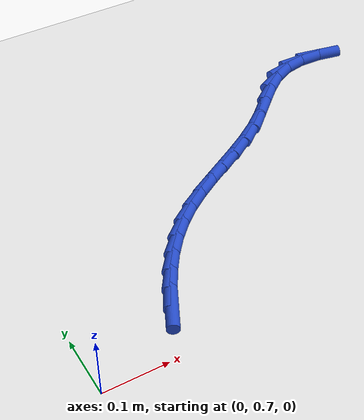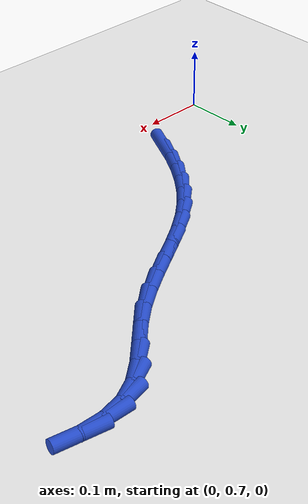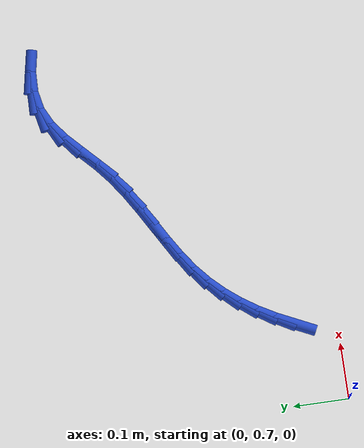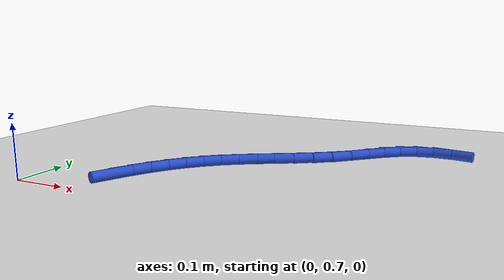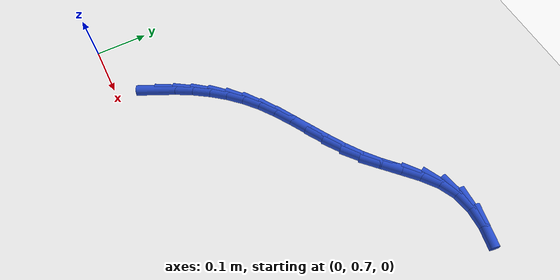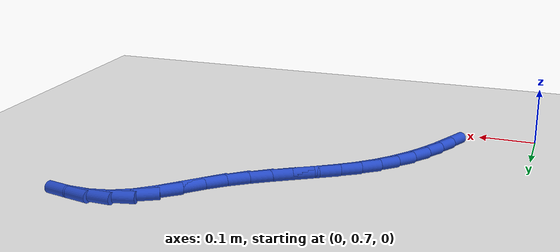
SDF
<sdf version="1.6">
 <world name="default">
  <model name="ground_plane">
   <static>1</static>
   <link name="link">
    <collision name="collision">
     <geometry><plane><normal>0 0 1</normal><size>100 100</size></plane></geometry>
     <surface><friction><ode><mu>100</mu><mu2>50</mu2></ode></friction></surface>
    </collision>
    <visual name="visual">
     <cast_shadows>0</cast_shadows>
     <geometry><plane><normal>0 0 1</normal><size>100 100</size></plane></geometry>
     <material>
      <script><uri>file://media/materials/scripts/gazebo.material</uri><name>Gazebo/WhiteGlow</name></script>
     </material>
    </visual>
   </link>
  </model>
  <model name="line">
   <link name="link_21">
    <pose>0.14508885758028742 0.7756922864772411 0.01 0 1.57 1.1218911109934948</pose>
    <collision name="collision">
     <geometry><cylinder><radius>0.01</radius><length>0.08</length></cylinder></geometry>
    </collision>
    <visual name="visual">
     <material>
      <script><name>Gazebo/Blue</name><uri>file://media/materials/scripts/gazebo.material</uri></script>
     </material>
     <geometry><cylinder><radius>0.01</radius><length>0.08</length></cylinder></geometry>
    </visual>
   </link>
   <link name="link_22">
    <pose>0.160461485988186 0.8076052027384023 0.01 0 1.57 1.0553476685875287</pose>
    <collision name="collision">
     <geometry><cylinder><radius>0.01</radius><length>0.08</length></cylinder></geometry>
    </collision>
    <visual name="visual">
     <material>
      <script><name>Gazebo/Blue</name><uri>file://media/materials/scripts/gazebo.material</uri></script>
     </material>
     <geometry><cylinder><radius>0.01</radius><length>0.08</length></cylinder></geometry>
    </visual>
   </link>
   <link name="link_23">
    <pose>0.17764666998283013 0.8379390942787058 0.01 0 1.57 0.9806886736086488</pose>
    <collision name="collision">
     <geometry><cylinder><radius>0.01</radius><length>0.08</length></cylinder></geometry>
    </collision>
    <visual name="visual">
     <material>
      <script><name>Gazebo/Blue</name><uri>file://media/materials/scripts/gazebo.material</uri></script>
     </material>
     <geometry><cylinder><radius>0.01</radius><length>0.08</length></cylinder></geometry>
    </visual>
   </link>
   <link name="link_24">
    <pose>0.19679826546166507 0.8665358757780477 0.01 0 1.57 0.898100394046</pose>
    <collision name="collision">
     <geometry><cylinder><radius>0.01</radius><length>0.08</length></cylinder></geometry>
    </collision>
    <visual name="visual">
     <material>
      <script><name>Gazebo/Blue</name><uri>file://media/materials/scripts/gazebo.material</uri></script>
     </material>
     <geometry><cylinder><radius>0.01</radius><length>0.08</length></cylinder></geometry>
    </visual>
   </link>
   <link name="link_25">
    <pose>0.21807012832213565 0.893237461916323 0.01 0 1.57 0.8082665803071494</pose>
    <collision name="collision">
     <geometry><cylinder><radius>0.01</radius><length>0.08</length></cylinder></geometry>
    </collision>
    <visual name="visual">
     <material>
      <script><name>Gazebo/Blue</name><uri>file://media/materials/scripts/gazebo.material</uri></script>
     </material>
     <geometry><cylinder><radius>0.01</radius><length>0.08</length></cylinder></geometry>
    </visual>
   </link>
   <link name="link_26">
    <pose>0.24161611446168746 0.9178857673734286 0.01 0 1.57 0.7124696456041776</pose>
    <collision name="collision">
     <geometry><cylinder><radius>0.01</radius><length>0.08</length></cylinder></geometry>
    </collision>
    <visual name="visual">
     <material>
      <script><name>Gazebo/Blue</name><uri>file://media/materials/scripts/gazebo.material</uri></script>
     </material>
     <geometry><cylinder><radius>0.01</radius><length>0.08</length></cylinder></geometry>
    </visual>
   </link>
   <link name="link_27">
    <pose>0.26758998024599756 0.9403228238718759 0.01 0 1.57 0.6205473133203346</pose>
    <collision name="collision">
     <geometry><cylinder><radius>0.01</radius><length>0.08</length></cylinder></geometry>
    </collision>
    <visual name="visual">
     <material>
      <script><name>Gazebo/Blue</name><uri>file://media/materials/scripts/gazebo.material</uri></script>
     </material>
     <geometry><cylinder><radius>0.01</radius><length>0.08</length></cylinder></geometry>
    </visual>
   </link>
   <link name="link_28">
    <pose>0.29596470244814815 0.960603247687919 0.01 0 1.57 0.5576238310340662</pose>
    <collision name="collision">
     <geometry><cylinder><radius>0.01</radius><length>0.08</length></cylinder></geometry>
    </collision>
    <visual name="visual">
     <material>
      <script><name>Gazebo/Blue</name><uri>file://media/materials/scripts/gazebo.material</uri></script>
     </material>
     <geometry><cylinder><radius>0.01</radius><length>0.08</length></cylinder></geometry>
    </visual>
   </link>
   <link name="link_29">
    <pose>0.3261588198050851 0.9794336366671805 0.01 0 1.57 0.5265953932676376</pose>
    <collision name="collision">
     <geometry><cylinder><radius>0.01</radius><length>0.08</length></cylinder></geometry>
    </collision>
    <visual name="visual">
     <material>
      <script><name>Gazebo/Blue</name><uri>file://media/materials/scripts/gazebo.material</uri></script>
     </material>
     <geometry><cylinder><radius>0.01</radius><length>0.08</length></cylinder></geometry>
    </visual>
   </link>
   <link name="link_30">
    <pose>0.3574849373258601 0.997645159542667 0.01 0 1.57 0.5255085717485836</pose>
    <collision name="collision">
     <geometry><cylinder><radius>0.01</radius><length>0.08</length></cylinder></geometry>
    </collision>
    <visual name="visual">
     <material>
      <script><name>Gazebo/Blue</name><uri>file://media/materials/scripts/gazebo.material</uri></script>
     </material>
     <geometry><cylinder><radius>0.01</radius><length>0.08</length></cylinder></geometry>
    </visual>
   </link>
   <link name="link_31">
    <pose>0.3892556600195249 1.0160689850473856 0.01 0 1.57 0.5531602748926076</pose>
    <collision name="collision">
     <geometry><cylinder><radius>0.01</radius><length>0.08</length></cylinder></geometry>
    </collision>
    <visual name="visual">
     <material>
      <script><name>Gazebo/Blue</name><uri>file://media/materials/scripts/gazebo.material</uri></script>
     </material>
     <geometry><cylinder><radius>0.01</radius><length>0.08</length></cylinder></geometry>
    </visual>
   </link>
   <link name="link_32">
    <pose>0.420783592895131 1.0355362819143434 0.01 0 1.57 0.6090463096490613</pose>
    <collision name="collision">
     <geometry><cylinder><radius>0.01</radius><length>0.08</length></cylinder></geometry>
    </collision>
    <visual name="visual">
     <material>
      <script><name>Gazebo/Blue</name><uri>file://media/materials/scripts/gazebo.material</uri></script>
     </material>
     <geometry><cylinder><radius>0.01</radius><length>0.08</length></cylinder></geometry>
    </visual>
   </link>
   <link name="link_33">
    <pose>0.4513813409617303 1.0568782188765482 0.01 0 1.57 0.6923891893803408</pose>
    <collision name="collision">
     <geometry><cylinder><radius>0.01</radius><length>0.08</length></cylinder></geometry>
    </collision>
    <visual name="visual">
     <material>
      <script><name>Gazebo/Blue</name><uri>file://media/materials/scripts/gazebo.material</uri></script>
     </material>
     <geometry><cylinder><radius>0.01</radius><length>0.08</length></cylinder></geometry>
    </visual>
   </link>
   <link name="link_34">
    <pose>0.480366219760524 1.0809171384096203 0.01 0 1.57 0.7667306337546183</pose>
    <collision name="collision">
     <geometry><cylinder><radius>0.01</radius><length>0.08</length></cylinder></geometry>
    </collision>
    <visual name="visual">
     <material>
      <script><name>Gazebo/Blue</name><uri>file://media/materials/scripts/gazebo.material</uri></script>
     </material>
     <geometry><cylinder><radius>0.01</radius><length>0.08</length></cylinder></geometry>
    </visual>
   </link>
   <link name="link_35">
    <pose>0.5077066447885126 1.1072553985774676 0.01 0 1.57 0.7628272210278371</pose>
    <collision name="collision">
     <geometry><cylinder><radius>0.01</radius><length>0.08</length></cylinder></geometry>
    </collision>
    <visual name="visual">
     <material>
      <script><name>Gazebo/Blue</name><uri>file://media/materials/scripts/gazebo.material</uri></script>
     </material>
     <geometry><cylinder><radius>0.01</radius><length>0.08</length></cylinder></geometry>
    </visual>
   </link>
   <link name="link_36">
    <pose>0.534681732381642 1.1330394601924367 0.01 0 1.57 0.6669708569229804</pose>
    <collision name="collision">
     <geometry><cylinder><radius>0.01</radius><length>0.08</length></cylinder></geometry>
    </collision>
    <visual name="visual">
     <material>
      <script><name>Gazebo/Blue</name><uri>file://media/materials/scripts/gazebo.material</uri></script>
     </material>
     <geometry><cylinder><radius>0.01</radius><length>0.08</length></cylinder></geometry>
    </visual>
   </link>
   <link name="link_37">
    <pose>0.5627278399127258 1.155121157086561 0.01 0 1.57 0.4628962566847399</pose>
    <collision name="collision">
     <geometry><cylinder><radius>0.01</radius><length>0.08</length></cylinder></geometry>
    </collision>
    <visual name="visual">
     <material>
      <script><name>Gazebo/Blue</name><uri>file://media/materials/scripts/gazebo.material</uri></script>
     </material>
     <geometry><cylinder><radius>0.01</radius><length>0.08</length></cylinder></geometry>
    </visual>
   </link>
   <link name="link_38">
    <pose>0.5932750543251479 1.1703660854109748 0.01 0 1.57 0.1945143391421146</pose>
    <collision name="collision">
     <geometry><cylinder><radius>0.01</radius><length>0.08</length></cylinder></geometry>
    </collision>
    <visual name="visual">
     <material>
      <script><name>Gazebo/Blue</name><uri>file://media/materials/scripts/gazebo.material</uri></script>
     </material>
     <geometry><cylinder><radius>0.01</radius><length>0.08</length></cylinder></geometry>
    </visual>
   </link>
   <link name="link_39">
    <pose>0.6271185139508031 1.1770334245638254 0.01 0 1.57 -0.02935698226489924</pose>
    <collision name="collision">
     <geometry><cylinder><radius>0.01</radius><length>0.08</length></cylinder></geometry>
    </collision>
    <visual name="visual">
     <material>
      <script><name>Gazebo/Blue</name><uri>file://media/materials/scripts/gazebo.material</uri></script>
     </material>
     <geometry><cylinder><radius>0.01</radius><length>0.08</length></cylinder></geometry>
    </visual>
   </link>
   <link name="link_40">
    <pose>0.6638817208534781 1.1759538575976964 0.01 0 1.57 -0.19450644139646786</pose>
    <collision name="collision">
     <geometry><cylinder><radius>0.01</radius><length>0.08</length></cylinder></geometry>
    </collision>
    <visual name="visual">
     <material>
      <script><name>Gazebo/Blue</name><uri>file://media/materials/scripts/gazebo.material</uri></script>
     </material>
     <geometry><cylinder><radius>0.01</radius><length>0.08</length></cylinder></geometry>
    </visual>
   </link>
  </model>
 </world>
</sdf>
